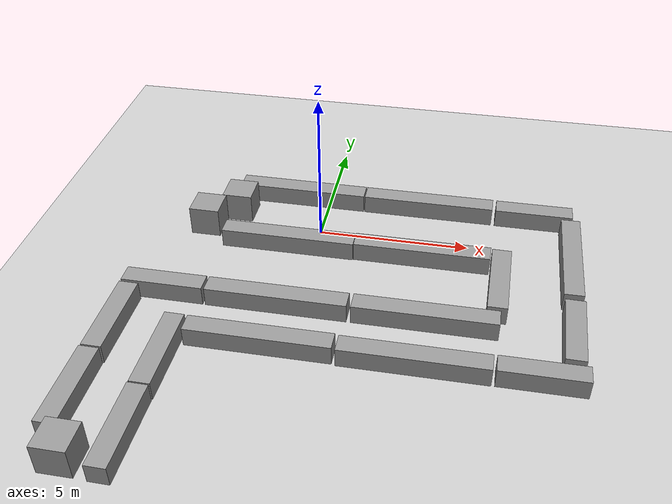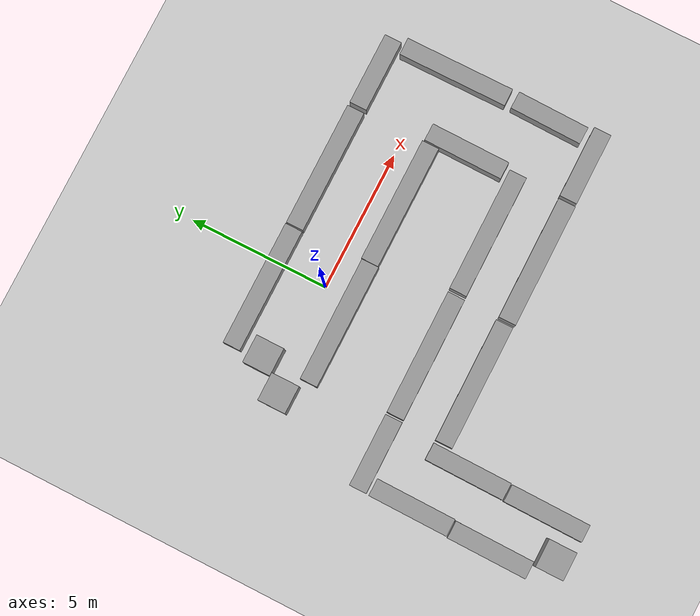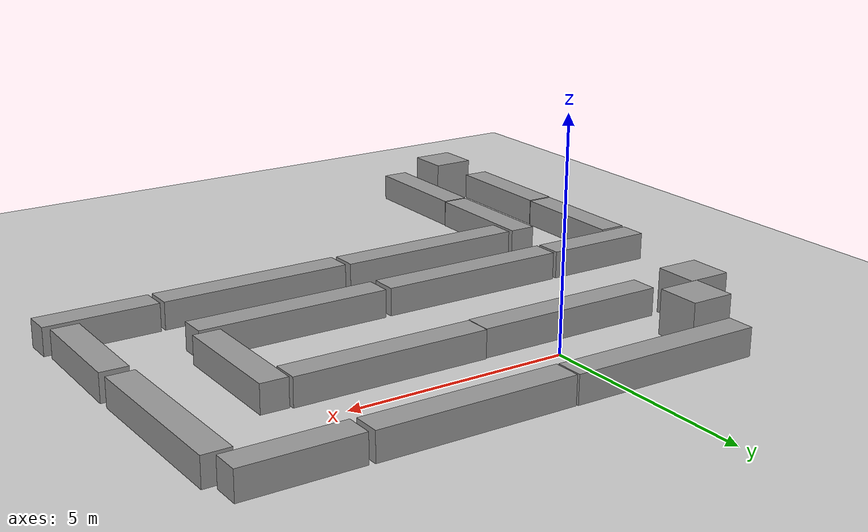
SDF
<sdf version="1.6">
 <world name="default">
  <light name="sun" type="directional">
   <pose>0 0 10 0 -0 0</pose>
   <diffuse>0.8 0.8 0.8 1</diffuse>
   <specular>0.2 0.2 0.2 1</specular>
   <attenuation>
    <range>1000</range>
    <constant>0.9</constant>
    <linear>0.01</linear>
    <quadratic>0.001</quadratic>
   </attenuation>
   <direction>-0.5 0.1 -0.9</direction>
  </light>
  <model name="ground_plane">
   <static>1</static>
   <link name="link">
    <collision name="collision">
     <geometry><plane><normal>0 0 1</normal><size>100 100</size></plane></geometry>
     <surface>
      <contact><collide_bitmask>65535</collide_bitmask></contact>
      <friction><ode><mu>100</mu><mu2>50</mu2></ode></friction>
     </surface>
    </collision>
    <visual name="visual">
     <cast_shadows>0</cast_shadows>
     <geometry><plane><normal>0 0 1</normal><size>100 100</size></plane></geometry>
     <material>
      <script><uri>file://media/materials/scripts/gazebo.material</uri><name>Gazebo/Grey</name></script>
     </material>
    </visual>
   </link>
  </model>
  <gravity>0 0 -9.8</gravity>
  <magnetic_field>6e-06 2.3e-05 -4.2e-05</magnetic_field>
  <atmosphere type="adiabatic"/>
  <physics name="default_physics" default="0" type="ode">
   <max_step_size>0.001</max_step_size>
   <real_time_factor>1</real_time_factor>
   <real_time_update_rate>1000</real_time_update_rate>
  </physics>
  <scene><ambient>0.4 0.4 0.4 1</ambient><background>0.7 0.7 0.7 1</background><shadows>1</shadows></scene>
  <spherical_coordinates>
   <surface_model>EARTH_WGS84</surface_model>
   <latitude_deg>0</latitude_deg>
   <longitude_deg>0</longitude_deg>
   <elevation>0</elevation>
   <heading_deg>0</heading_deg>
  </spherical_coordinates>
  <model name="unit_box">
   <pose>-0.881843 -0.995438 0.314738 1e-06 0.000673 0.00085</pose>
   <link name="link">
    <inertial>
     <mass>1</mass>
     <inertia>
      <ixx>0.166667</ixx>
      <ixy>0</ixy>
      <ixz>0</ixz>
      <iyy>0.166667</iyy>
      <iyz>0</iyz>
      <izz>0.166667</izz>
     </inertia>
    </inertial>
    <collision name="collision"><geometry><box><size>4.42903 0.617444 0.632457</size></box></geometry></collision>
    <visual name="visual">
     <geometry><box><size>4.42903 0.617444 0.632457</size></box></geometry>
     <material>
      <script><name>Gazebo/Grey</name><uri>file://media/materials/scripts/gazebo.material</uri></script>
     </material>
    </visual>
   </link>
  </model>
  <model name="unit_box_clone">
   <pose>-0.97235 1.80041 0.314738 -1e-06 0.000673 -0.00084</pose>
   <link name="link">
    <inertial>
     <mass>1</mass>
     <inertia>
      <ixx>0.166667</ixx>
      <ixy>0</ixy>
      <ixz>0</ixz>
      <iyy>0.166667</iyy>
      <iyz>0</iyz>
      <izz>0.166667</izz>
     </inertia>
    </inertial>
    <collision name="collision"><geometry><box><size>4.42903 0.617444 0.632457</size></box></geometry></collision>
    <visual name="visual">
     <geometry><box><size>4.42903 0.617444 0.632457</size></box></geometry>
     <material>
      <script><name>Gazebo/Grey</name><uri>file://media/materials/scripts/gazebo.material</uri></script>
     </material>
    </visual>
   </link>
  </model>
  <model name="unit_box_clone_0">
   <pose>3.56118 -0.964928 0.314738 1e-06 -0.000673 -0.000359</pose>
   <link name="link">
    <inertial>
     <mass>1</mass>
     <inertia>
      <ixx>0.166667</ixx>
      <ixy>0</ixy>
      <ixz>0</ixz>
      <iyy>0.166667</iyy>
      <iyz>0</iyz>
      <izz>0.166667</izz>
     </inertia>
    </inertial>
    <collision name="collision"><geometry><box><size>4.42903 0.617444 0.632457</size></box></geometry></collision>
    <visual name="visual">
     <geometry><box><size>4.42903 0.617444 0.632457</size></box></geometry>
     <material>
      <script><name>Gazebo/Grey</name><uri>file://media/materials/scripts/gazebo.material</uri></script>
     </material>
    </visual>
   </link>
  </model>
  <model name="unit_box_clone_1">
   <pose>3.49992 1.79237 0.314738 1e-06 0.000673 0.00084</pose>
   <link name="link">
    <inertial>
     <mass>1</mass>
     <inertia>
      <ixx>0.166667</ixx>
      <ixy>0</ixy>
      <ixz>0</ixz>
      <iyy>0.166667</iyy>
      <iyz>0</iyz>
      <izz>0.166667</izz>
     </inertia>
    </inertial>
    <collision name="collision"><geometry><box><size>4.42903 0.617444 0.632457</size></box></geometry></collision>
    <visual name="visual">
     <geometry><box><size>4.42903 0.617444 0.632457</size></box></geometry>
     <material>
      <script><name>Gazebo/Grey</name><uri>file://media/materials/scripts/gazebo.material</uri></script>
     </material>
    </visual>
   </link>
  </model>
  <model name="unit_box_clone_2">
   <pose>8.38569 -4.07643 0.316225 -1e-05 -0 1.55358</pose>
   <link name="link">
    <inertial>
     <mass>1</mass>
     <inertia>
      <ixx>0.166667</ixx>
      <ixy>0</ixy>
      <ixz>0</ixz>
      <iyy>0.166667</iyy>
      <iyz>0</iyz>
      <izz>0.166667</izz>
     </inertia>
    </inertial>
    <collision name="collision"><geometry><box><size>2.58219 0.617444 0.632457</size></box></geometry></collision>
    <visual name="visual">
     <geometry><box><size>2.58219 0.617444 0.632457</size></box></geometry>
     <material>
      <script><name>Gazebo/Grey</name><uri>file://media/materials/scripts/gazebo.material</uri></script>
     </material>
    </visual>
   </link>
  </model>
  <model name="unit_box_clone_2_clone">
   <pose>7.13068 1.77722 0.316108 0 -9.3e-05 0.000832</pose>
   <link name="link">
    <inertial>
     <mass>1</mass>
     <inertia>
      <ixx>0.166667</ixx>
      <ixy>0</ixy>
      <ixz>0</ixz>
      <iyy>0.166667</iyy>
      <iyz>0</iyz>
      <izz>0.166667</izz>
     </inertia>
    </inertial>
    <collision name="collision"><geometry><box><size>2.58219 0.617444 0.632457</size></box></geometry></collision>
    <visual name="visual">
     <geometry><box><size>2.58219 0.617444 0.632457</size></box></geometry>
     <material>
      <script><name>Gazebo/Grey</name><uri>file://media/materials/scripts/gazebo.material</uri></script>
     </material>
    </visual>
   </link>
  </model>
  <model name="unit_box_clone_2_clone_0">
   <pose>6.1218 -2.13489 0.316037 0 0.000135 1.5624</pose>
   <link name="link">
    <inertial>
     <mass>1</mass>
     <inertia>
      <ixx>0.166667</ixx>
      <ixy>0</ixy>
      <ixz>0</ixz>
      <iyy>0.166667</iyy>
      <iyz>0</iyz>
      <izz>0.166667</izz>
     </inertia>
    </inertial>
    <collision name="collision"><geometry><box><size>2.83632 0.617444 0.632457</size></box></geometry></collision>
    <visual name="visual">
     <geometry><box><size>2.83632 0.617444 0.632457</size></box></geometry>
     <material>
      <script><name>Gazebo/Grey</name><uri>file://media/materials/scripts/gazebo.material</uri></script>
     </material>
    </visual>
   </link>
  </model>
  <model name="unit_box_clone_2_clone_1">
   <pose>8.36642 -0.603958 0.315378 0 0.000435 1.57879</pose>
   <link name="link">
    <inertial>
     <mass>1</mass>
     <inertia>
      <ixx>0.166667</ixx>
      <ixy>0</ixy>
      <ixz>0</ixz>
      <iyy>0.166667</iyy>
      <iyz>0</iyz>
      <izz>0.166667</izz>
     </inertia>
    </inertial>
    <collision name="collision"><geometry><box><size>3.90516 0.617444 0.632457</size></box></geometry></collision>
    <visual name="visual">
     <geometry><box><size>3.90516 0.617444 0.632457</size></box></geometry>
     <material>
      <script><name>Gazebo/Grey</name><uri>file://media/materials/scripts/gazebo.material</uri></script>
     </material>
    </visual>
   </link>
  </model>
  <model name="unit_box_clone_2_clone_clone">
   <pose>7.48708 -5.8581 0.316225 -1e-05 -0 0.000848</pose>
   <link name="link">
    <inertial>
     <mass>1</mass>
     <inertia>
      <ixx>0.166667</ixx>
      <ixy>0</ixy>
      <ixz>0</ixz>
      <iyy>0.166667</iyy>
      <iyz>0</iyz>
      <izz>0.166667</izz>
     </inertia>
    </inertial>
    <collision name="collision"><geometry><box><size>2.58219 0.617444 0.632457</size></box></geometry></collision>
    <visual name="visual">
     <geometry><box><size>2.58219 0.617444 0.632457</size></box></geometry>
     <material>
      <script><name>Gazebo/Grey</name><uri>file://media/materials/scripts/gazebo.material</uri></script>
     </material>
    </visual>
   </link>
  </model>
  <model name="unit_box_clone_1_clone">
   <pose>4.00187 -4.00004 0.314738 -1e-06 -0.000673 0.000835</pose>
   <link name="link">
    <inertial>
     <mass>1</mass>
     <inertia>
      <ixx>0.166667</ixx>
      <ixy>0</ixy>
      <ixz>0</ixz>
      <iyy>0.166667</iyy>
      <iyz>0</iyz>
      <izz>0.166667</izz>
     </inertia>
    </inertial>
    <collision name="collision"><geometry><box><size>4.42903 0.617444 0.632457</size></box></geometry></collision>
    <visual name="visual">
     <geometry><box><size>4.42903 0.617444 0.632457</size></box></geometry>
     <material>
      <script><name>Gazebo/Grey</name><uri>file://media/materials/scripts/gazebo.material</uri></script>
     </material>
    </visual>
   </link>
  </model>
  <model name="unit_box_clone_1_clone_clone">
   <pose>3.88361 -5.86902 0.314738 -1e-06 -0.000673 0.000835</pose>
   <link name="link">
    <inertial>
     <mass>1</mass>
     <inertia>
      <ixx>0.166667</ixx>
      <ixy>0</ixy>
      <ixz>0</ixz>
      <iyy>0.166667</iyy>
      <iyz>0</iyz>
      <izz>0.166667</izz>
     </inertia>
    </inertial>
    <collision name="collision"><geometry><box><size>4.42903 0.617444 0.632457</size></box></geometry></collision>
    <visual name="visual">
     <geometry><box><size>4.42903 0.617444 0.632457</size></box></geometry>
     <material>
      <script><name>Gazebo/Grey</name><uri>file://media/materials/scripts/gazebo.material</uri></script>
     </material>
    </visual>
   </link>
  </model>
  <model name="unit_box_clone_1_clone_clone_0">
   <pose>-0.557521 -4.01085 0.314738 -1e-06 -0.000673 0.000835</pose>
   <link name="link">
    <inertial>
     <mass>1</mass>
     <inertia>
      <ixx>0.166667</ixx>
      <ixy>0</ixy>
      <ixz>0</ixz>
      <iyy>0.166667</iyy>
      <iyz>0</iyz>
      <izz>0.166667</izz>
     </inertia>
    </inertial>
    <collision name="collision"><geometry><box><size>4.42903 0.617444 0.632457</size></box></geometry></collision>
    <visual name="visual">
     <geometry><box><size>4.42903 0.617444 0.632457</size></box></geometry>
     <material>
      <script><name>Gazebo/Grey</name><uri>file://media/materials/scripts/gazebo.material</uri></script>
     </material>
    </visual>
   </link>
  </model>
  <model name="unit_box_clone_1_clone_clone_1">
   <pose>-0.655032 -5.83587 0.314738 -1e-06 -0.000673 0.000835</pose>
   <link name="link">
    <inertial>
     <mass>1</mass>
     <inertia>
      <ixx>0.166667</ixx>
      <ixy>0</ixy>
      <ixz>0</ixz>
      <iyy>0.166667</iyy>
      <iyz>0</iyz>
      <izz>0.166667</izz>
     </inertia>
    </inertial>
    <collision name="collision"><geometry><box><size>4.42903 0.617444 0.632457</size></box></geometry></collision>
    <visual name="visual">
     <geometry><box><size>4.42903 0.617444 0.632457</size></box></geometry>
     <material>
      <script><name>Gazebo/Grey</name><uri>file://media/materials/scripts/gazebo.material</uri></script>
     </material>
    </visual>
   </link>
  </model>
  <model name="unit_box_clone_2_clone_0_clone">
   <pose>-5.15557 -5.83553 0.316228 0 -0 1.56215</pose>
   <link name="link">
    <inertial>
     <mass>1</mass>
     <inertia>
      <ixx>0.166667</ixx>
      <ixy>0</ixy>
      <ixz>0</ixz>
      <iyy>0.166667</iyy>
      <iyz>0</iyz>
      <izz>0.166667</izz>
     </inertia>
    </inertial>
    <collision name="collision"><geometry><box><size>2.83632 0.617444 0.632457</size></box></geometry></collision>
    <visual name="visual">
     <geometry><box><size>2.83632 0.617444 0.632457</size></box></geometry>
     <material>
      <script><name>Gazebo/Grey</name><uri>file://media/materials/scripts/gazebo.material</uri></script>
     </material>
    </visual>
   </link>
  </model>
  <model name="unit_box_clone_2_clone_clone_0">
   <pose>-4.14653 -4.00961 0.316225 -1e-05 -0 0.000848</pose>
   <link name="link">
    <inertial>
     <mass>1</mass>
     <inertia>
      <ixx>0.166667</ixx>
      <ixy>0</ixy>
      <ixz>0</ixz>
      <iyy>0.166667</iyy>
      <iyz>0</iyz>
      <izz>0.166667</izz>
     </inertia>
    </inertial>
    <collision name="collision"><geometry><box><size>2.58219 0.617444 0.632457</size></box></geometry></collision>
    <visual name="visual">
     <geometry><box><size>2.58219 0.617444 0.632457</size></box></geometry>
     <material>
      <script><name>Gazebo/Grey</name><uri>file://media/materials/scripts/gazebo.material</uri></script>
     </material>
    </visual>
   </link>
  </model>
  <model name="unit_box_clone_2_clone_0_clone_clone">
   <pose>-3.28971 -6.94093 0.316228 0 -0 1.56215</pose>
   <link name="link">
    <inertial>
     <mass>1</mass>
     <inertia>
      <ixx>0.166667</ixx>
      <ixy>0</ixy>
      <ixz>0</ixz>
      <iyy>0.166667</iyy>
      <iyz>0</iyz>
      <izz>0.166667</izz>
     </inertia>
    </inertial>
    <collision name="collision"><geometry><box><size>2.83632 0.617444 0.632457</size></box></geometry></collision>
    <visual name="visual">
     <geometry><box><size>2.83632 0.617444 0.632457</size></box></geometry>
     <material>
      <script><name>Gazebo/Grey</name><uri>file://media/materials/scripts/gazebo.material</uri></script>
     </material>
    </visual>
   </link>
  </model>
  <model name="unit_box_clone_2_clone_0_clone_clone_0">
   <pose>-5.20866 -8.72311 0.316228 0 -0 1.56215</pose>
   <link name="link">
    <inertial>
     <mass>1</mass>
     <inertia>
      <ixx>0.166667</ixx>
      <ixy>0</ixy>
      <ixz>0</ixz>
      <iyy>0.166667</iyy>
      <iyz>0</iyz>
      <izz>0.166667</izz>
     </inertia>
    </inertial>
    <collision name="collision"><geometry><box><size>2.83632 0.617444 0.632457</size></box></geometry></collision>
    <visual name="visual">
     <geometry><box><size>2.83632 0.617444 0.632457</size></box></geometry>
     <material>
      <script><name>Gazebo/Grey</name><uri>file://media/materials/scripts/gazebo.material</uri></script>
     </material>
    </visual>
   </link>
  </model>
  <model name="unit_box_clone_2_clone_0_clone_clone_1">
   <pose>-3.33391 -9.81821 0.316228 0 -0 1.56215</pose>
   <link name="link">
    <inertial>
     <mass>1</mass>
     <inertia>
      <ixx>0.166667</ixx>
      <ixy>0</ixy>
      <ixz>0</ixz>
      <iyy>0.166667</iyy>
      <iyz>0</iyz>
      <izz>0.166667</izz>
     </inertia>
    </inertial>
    <collision name="collision"><geometry><box><size>2.83632 0.617444 0.632457</size></box></geometry></collision>
    <visual name="visual">
     <geometry><box><size>2.83632 0.617444 0.632457</size></box></geometry>
     <material>
      <script><name>Gazebo/Grey</name><uri>file://media/materials/scripts/gazebo.material</uri></script>
     </material>
    </visual>
   </link>
  </model>
  <model name="unit_box_0">
   <pose>-4.53169 -10.712 0.5 0 -0 0</pose>
   <link name="link">
    <inertial>
     <mass>1</mass>
     <inertia>
      <ixx>0.166667</ixx>
      <ixy>0</ixy>
      <ixz>0</ixz>
      <iyy>0.166667</iyy>
      <iyz>0</iyz>
      <izz>0.166667</izz>
     </inertia>
    </inertial>
    <collision name="collision"><geometry><box><size>1 1 1</size></box></geometry></collision>
    <visual name="visual">
     <geometry><box><size>1 1 1</size></box></geometry>
     <material>
      <script><name>Gazebo/Grey</name><uri>file://media/materials/scripts/gazebo.material</uri></script>
     </material>
    </visual>
   </link>
  </model>
  <model name="unit_box_1">
   <pose>-2.98135 0.700505 0.5 0 -0 0</pose>
   <link name="link">
    <inertial>
     <mass>1</mass>
     <inertia>
      <ixx>0.166667</ixx>
      <ixy>0</ixy>
      <ixz>0</ixz>
      <iyy>0.166667</iyy>
      <iyz>0</iyz>
      <izz>0.166667</izz>
     </inertia>
    </inertial>
    <collision name="collision"><geometry><box><size>1 1 1</size></box></geometry></collision>
    <visual name="visual">
     <geometry><box><size>1 1 1</size></box></geometry>
     <material>
      <script><name>Gazebo/Grey</name><uri>file://media/materials/scripts/gazebo.material</uri></script>
     </material>
    </visual>
   </link>
  </model>
  <model name="unit_box_2">
   <pose>-3.84983 -0.306967 0.5 0 -0 0</pose>
   <link name="link">
    <inertial>
     <mass>1</mass>
     <inertia>
      <ixx>0.166667</ixx>
      <ixy>0</ixy>
      <ixz>0</ixz>
      <iyy>0.166667</iyy>
      <iyz>0</iyz>
      <izz>0.166667</izz>
     </inertia>
    </inertial>
    <collision name="collision"><geometry><box><size>1 1 1</size></box></geometry></collision>
    <visual name="visual">
     <geometry><box><size>1 1 1</size></box></geometry>
     <material>
      <script><name>Gazebo/Grey</name><uri>file://media/materials/scripts/gazebo.material</uri></script>
     </material>
    </visual>
   </link>
  </model>
 </world>
</sdf>
